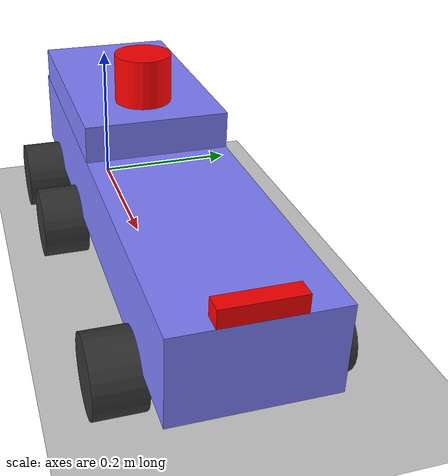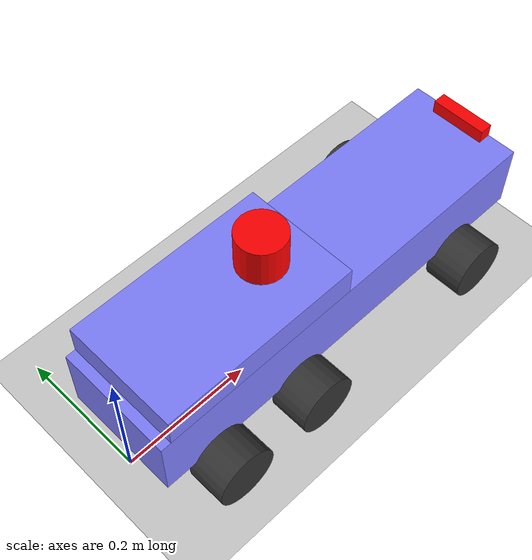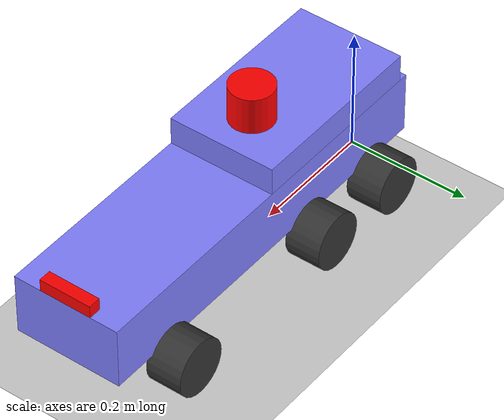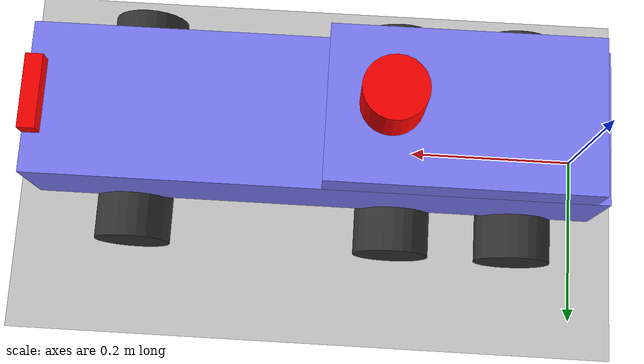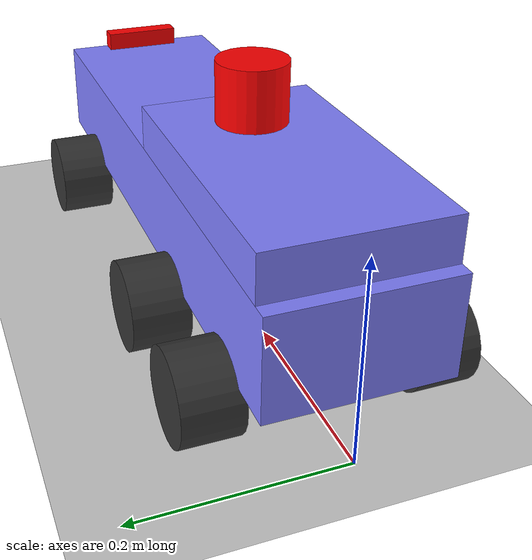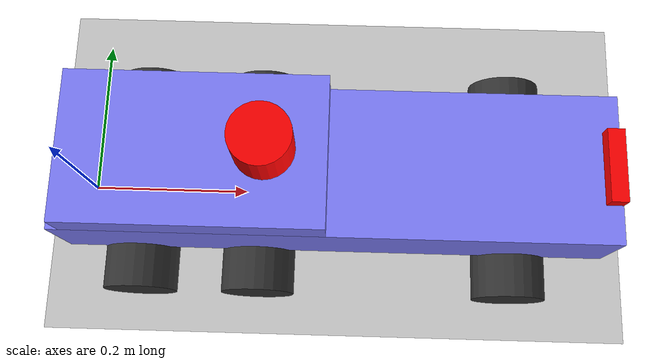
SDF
<?xml version="1.0" ?>
<sdf version="1.6">
  <world name="ackermann_steering">

    <physics name="1ms" type="ignored">
      <max_step_size>0.001</max_step_size>
      <real_time_factor>1.0</real_time_factor>
    </physics>
    <plugin
      filename="gz-sim-physics-system"
      name="gz::sim::systems::Physics">
    </plugin>
    <plugin
      filename="gz-sim-user-commands-system"
      name="gz::sim::systems::UserCommands">
    </plugin>
    <plugin
      filename="gz-sim-scene-broadcaster-system"
      name="gz::sim::systems::SceneBroadcaster">
    </plugin>

    <!-- imu -->
    <plugin filename="gz-sim-imu-system"
            name="gz::sim::systems::Imu">
    </plugin>
    <!-- lidar -->
    <plugin
        filename="gz-sim-sensors-system"
        name="gz::sim::systems::Sensors">
        <render_engine>ogre2</render_engine>
    </plugin>

    <light type="directional" name="sun">
      <cast_shadows>true</cast_shadows>
      <pose>0 0 10 0 0 0</pose>
      <diffuse>1 1 1 1</diffuse>
      <specular>0.5 0.5 0.5 1</specular>
      <attenuation>
        <range>1000</range>
        <constant>0.9</constant>
        <linear>0.01</linear>
        <quadratic>0.001</quadratic>
      </attenuation>
      <direction>-0.5 0.1 -0.9</direction>
    </light>

    <model name="ground_plane">
      <static>true</static>
      <link name="link">
        <collision name="collision">
          <geometry>
            <plane>
              <normal>0 0 1</normal>
              <size>100 100</size>
            </plane>
          </geometry>
          <surface>
            <friction>
              <ode>
                <mu>50</mu>
              </ode>
              <bullet>
                <friction>1</friction>
                <rolling_friction>0.1</rolling_friction>
              </bullet>
            </friction>
          </surface>
        </collision>
        <visual name="visual">
          <geometry>
            <plane>
              <normal>0 0 1</normal>
              <size>100 100</size>
            </plane>
          </geometry>
          <material>
            <ambient>0.8 0.8 0.8 1</ambient>
            <diffuse>0.8 0.8 0.8 1</diffuse>
            <specular>0.8 0.8 0.8 1</specular>
          </material>
        </visual>
      </link>
    </model>

    <model name='vehicle_blue'>
      <pose>0 0 0.12 0 00 0</pose>

    <!--baselink  -->
      <link name='chassis'>
        <pose>0.16 0 0 0 0 0</pose>
        <inertial>
          <mass>6000.0</mass>
          <inertia>
            <ixx>0.126164</ixx>
            <ixy>0</ixy>
            <ixz>0</ixz>
            <iyy>0.416519</iyy>
            <iyz>0</iyz>
            <izz>0.481014</izz>
          </inertia>
        </inertial>
        <visual name='visual'>
          <pose>0.16 0 0 0 0 0</pose>
          <geometry>
            <box>
              <size>0.65 0.175 0.1</size>
            </box>
          </geometry>
          <material>
            <ambient>0.5 0.5 1.0 1</ambient>
            <diffuse>0.5 0.5 1.0 1</diffuse>
            <specular>0.0 0.0 1.0 1</specular>
          </material>
        </visual>
        <collision name='collision'>
          <pose>0.16 0 0 0 0 0</pose>
          <geometry>
            <box>
              <size>0.65 0.175 0.1</size>
            </box>
          </geometry>
        </collision>
      </link>

    <!-- superstructure -->
    <link name='superstructure_link'>
        <pose relative_to="chassis">0 0 0.0725 0 0 0</pose>
        <inertial>
          <mass>2.0</mass>
          <inertia>
            <ixx>0.126164</ixx>
            <ixy>0</ixy>
            <ixz>0</ixz>
            <iyy>0.416519</iyy>
            <iyz>0</iyz>
            <izz>0.481014</izz>
          </inertia>
        </inertial>
        <visual name='visual'>
          <geometry>
            <box>
              <size>0.3 0.175 0.045</size>
            </box>
          </geometry>
          <material>
            <ambient>0.5 0.5 1.0 1</ambient>
            <diffuse>0.5 0.5 1.0 1</diffuse>
            <specular>0.0 0.0 1.0 1</specular>
          </material>
        </visual>
        <collision name='collision'>
          <geometry>
            <box>
              <size>0.3 0.175 0.045</size>
            </box>
          </geometry>
        </collision>
      </link>
    <joint name="superstructure_joint" type="fixed">
        <parent>chassis</parent>
        <child>superstructure_link</child>
        <pose relative_to="chassis">0 0 0.0725 0 0 0</pose>
    </joint>

    <!-- rear wheels -->
      <link name='rear_left_wheel'>
        <pose relative_to="chassis">-0.08 0.11 -0.0725 0 0 0</pose>

        <inertial>
          <mass>0.2</mass>
          <inertia>
            <ixx>0.145833</ixx>
            <ixy>0</ixy>
            <ixz>0</ixz>
            <iyy>0.145833</iyy>
            <iyz>0</iyz>
            <izz>0.125</izz>
          </inertia>
        </inertial>
        <visual name='visual'>
            <pose>0 0 0 1.5708 0 0</pose>
          <geometry>
            <cylinder>
              <length>0.0575</length>
              <radius>0.045</radius>
            </cylinder>
          </geometry>
          <material>
            <ambient>0.2 0.2 0.2 1</ambient>
            <diffuse>0.2 0.2 0.2 1</diffuse>
            <specular>0.2 0.2 0.2 1</specular>
          </material>
        </visual>
        <collision name='collision'>
            <pose>0 0 0 1.5708 0 0</pose>
          <geometry>
            <cylinder>
              <length>0.0575</length>
              <radius>0.045</radius>
            </cylinder>
          </geometry>
          <surface>
            <friction>
              <ode>
                <mu>0.5</mu>
                <mu2>1.0</mu2>
                <fdir1>0 0 1</fdir1>
              </ode>
              <bullet>
                <friction>0.5</friction>
                <friction2>1</friction2>
                <rolling_friction>0.1</rolling_friction>
              </bullet>
            </friction>
          </surface>
        </collision>
      </link>

      <link name='rear_right_wheel'>
        <pose relative_to="chassis">-0.08 -0.11 -0.0725 0 0 0</pose>
        <inertial>
          <mass>0.2</mass>
          <inertia>
            <ixx>0.145833</ixx>
            <ixy>0</ixy>
            <ixz>0</ixz>
            <iyy>0.145833</iyy>
            <iyz>0</iyz>
            <izz>0.125</izz>
          </inertia>
        </inertial>
        <visual name='visual'>

            <pose>0 0 0 1.5708 0 0</pose>
          <geometry>
            <cylinder>
              <length>0.0575</length>
              <radius>0.045</radius>
            </cylinder>
          </geometry>
          <material>
            <ambient>0.2 0.2 0.2 1</ambient>
            <diffuse>0.2 0.2 0.2 1</diffuse>
            <specular>0.2 0.2 0.2 1</specular>
          </material>
        </visual>
        <collision name='collision'>
            <pose>0 0 0 1.5708 0 0</pose>
          <geometry>
            <cylinder>
              <length>0.0575</length>
              <radius>0.045</radius>
            </cylinder>
          </geometry>
          <surface>
            <friction>
              <ode>
                <mu>0.5</mu>
                <mu2>1.0</mu2>
                <fdir1>0 0 1</fdir1>
              </ode>
              <bullet>
                <friction>0.5</friction>
                <friction2>1</friction2>
                <rolling_friction>0.5</rolling_friction>
              </bullet>
            </friction>
          </surface>
        </collision>
      </link>

      <!-- mid wheels -->
        <link name='mid_left_wheel'>
        <pose relative_to="chassis">0.065 0.11 -0.0725 0 0 0</pose>

        <inertial>
          <mass>0.2</mass>
          <inertia>
            <ixx>0.145833</ixx>
            <ixy>0</ixy>
            <ixz>0</ixz>
            <iyy>0.145833</iyy>
            <iyz>0</iyz>
            <izz>0.125</izz>
          </inertia>
        </inertial>
        <visual name='visual'>
            <pose>0 0 0 1.5708 0 0</pose>
          <geometry>
            <cylinder>
              <length>0.0575</length>
              <radius>0.045</radius>
            </cylinder>
          </geometry>
          <material>
            <ambient>0.2 0.2 0.2 1</ambient>
            <diffuse>0.2 0.2 0.2 1</diffuse>
            <specular>0.2 0.2 0.2 1</specular>
          </material>
        </visual>
        <collision name='collision'>
            <pose>0 0 0 1.5708 0 0</pose>
          <geometry>
            <cylinder>
              <length>0.0575</length>
              <radius>0.045</radius>
            </cylinder>
          </geometry>
          <surface>
            <friction>
              <ode>
                <mu>0.5</mu>
                <mu2>1.0</mu2>
                <fdir1>0 0 1</fdir1>
              </ode>
              <bullet>
                <friction>0.5</friction>
                <friction2>1</friction2>
                <rolling_friction>0.1</rolling_friction>
              </bullet>
            </friction>
          </surface>
        </collision>
      </link>

      <link name='mid_right_wheel'>
        <pose relative_to="chassis">0.065 -0.11 -0.0725 0 0 0</pose>
        <inertial>
          <mass>0.2</mass>
          <inertia>
            <ixx>0.145833</ixx>
            <ixy>0</ixy>
            <ixz>0</ixz>
            <iyy>0.145833</iyy>
            <iyz>0</iyz>
            <izz>0.125</izz>
          </inertia>
        </inertial>
        <visual name='visual'>

            <pose>0 0 0 1.5708 0 0</pose>
          <geometry>
            <cylinder>
              <length>0.0575</length>
              <radius>0.045</radius>
            </cylinder>
          </geometry>
          <material>
            <ambient>0.2 0.2 0.2 1</ambient>
            <diffuse>0.2 0.2 0.2 1</diffuse>
            <specular>0.2 0.2 0.2 1</specular>
          </material>
        </visual>
        <collision name='collision'>
            <pose>0 0 0 1.5708 0 0</pose>
          <geometry>
            <cylinder>
              <length>0.0575</length>
              <radius>0.045</radius>
            </cylinder>
          </geometry>
          <surface>
            <friction>
              <ode>
                <mu>0.5</mu>
                <mu2>1.0</mu2>
                <fdir1>0 0 1</fdir1>
              </ode>
              <bullet>
                <friction>0.5</friction>
                <friction2>1</friction2>
                <rolling_friction>0.5</rolling_friction>
              </bullet>
            </friction>
          </surface>
        </collision>
      </link>

     <!-- front wheels -->
      <link name='front_left_wheel'>
        <pose relative_to="chassis">0.375 0.11 -0.0725 0 0 0</pose>
        <inertial>
          <mass>0.2</mass>
          <inertia>
            <ixx>0.145833</ixx>
            <ixy>0</ixy>
            <ixz>0</ixz>
            <iyy>0.145833</iyy>
            <iyz>0</iyz>
            <izz>0.125</izz>
          </inertia>
        </inertial>
        <visual name='visual'>
            <pose>0 0 0 1.5708 0 0</pose>
          <geometry>
            <cylinder>
              <length>0.0575</length>
              <radius>0.045</radius>
            </cylinder>
          </geometry>
          <material>
            <ambient>0.2 0.2 0.2 1</ambient>
            <diffuse>0.2 0.2 0.2 1</diffuse>
            <specular>0.2 0.2 0.2 1</specular>
          </material>
        </visual>
        <collision name='collision'>
            <pose>0 0 0 1.5708 0 0</pose>
          <geometry>
            <cylinder>
              <length>0.0575</length>
              <radius>0.045</radius>
            </cylinder>
          </geometry>
          <surface>
            <friction>
              <ode>
                <mu>0.5</mu>
                <mu2>1.0</mu2>
                <fdir1>0 0 1</fdir1>
              </ode>
              <bullet>
                <friction>0.5</friction>
                <friction2>1</friction2>
                <rolling_friction>0.5</rolling_friction>
              </bullet>
            </friction>
          </surface>
        </collision>
      </link>

      <link name='front_right_wheel'>
      <pose relative_to="chassis">0.375 -0.11 -0.0725 0 0 0</pose>
        <inertial>
          <mass>0.2</mass>
          <inertia>
            <ixx>0.145833</ixx>
            <ixy>0</ixy>
            <ixz>0</ixz>
            <iyy>0.145833</iyy>
            <iyz>0</iyz>
            <izz>0.125</izz>
          </inertia>
        </inertial>
        <visual name='visual'>
            <pose>0 0 0 1.5708 0 0</pose>
          <geometry>
            <cylinder>
              <length>0.0575</length>
              <radius>0.045</radius>
            </cylinder>
          </geometry>
          <material>
            <ambient>0.2 0.2 0.2 1</ambient>
            <diffuse>0.2 0.2 0.2 1</diffuse>
            <specular>0.2 0.2 0.2 1</specular>
          </material>
        </visual>
        <collision name='collision'>
            <pose>0 0 0 1.5708 0 0</pose>
          <geometry>
            <cylinder>
              <length>0.0575</length>
              <radius>0.045</radius>
            </cylinder>
          </geometry>
          <surface>
            <friction>
              <ode>
                <mu>0.5</mu>
                <mu2>1.0</mu2>
                <fdir1>0 0 1</fdir1>
              </ode>
              <bullet>
                <friction>0.5</friction>
                <friction2>1</friction2>
                <rolling_friction>0.1</rolling_friction>
              </bullet>
            </friction>
          </surface>
        </collision>
      </link>

        <!-- steering links -->
      <link name="front_left_wheel_steering_link">
        <pose relative_to="chassis">0.375 0.11 -0.0725 0 0 0</pose>
        <inertial>
          <mass>0.1</mass>
          <inertia>
            <ixx>0.0153</ixx>
            <iyy>0.025</iyy>
            <izz>0.0153</izz>
          </inertia>
        </inertial>
      </link>

      <link name="front_right_wheel_steering_link">
        <pose relative_to="chassis">0.375 -0.11 -0.0725 0 0 0</pose>
        <inertial>
          <mass>0.1</mass>
          <inertia>
            <ixx>0.0153</ixx>
            <iyy>0.025</iyy>
            <izz>0.0153</izz>
          </inertia>
        </inertial>
      </link>

        <!-- lidar link  -->
        <link name="laser_frame">
            <pose relative_to="superstructure_link">0.08 0 0.0525 0 0 0</pose>
            <visual name="laser_visual">
                <geometry>
                    <cylinder>
                        <radius>0.035</radius>
                        <length>0.06</length>
                    </cylinder>
                </geometry>
                <material>
                    <ambient>1.0 0.0 0.0 1.0</ambient>
                    <diffuse>1.0 0.0 0.0 1.0</diffuse>
                    <specular>0.0 0.0 0.0 1.0</specular>
                </material>
            </visual>
            <sensor name='gpu_lidar' type='gpu_lidar'>"
                <pose relative_to='lidar_frame'>0 0 0 0 0 0</pose>
                <topic>lidar</topic>
                <update_rate>10</update_rate>
                <ray>
                    <scan>
                        <horizontal>
                            <samples>640</samples>
                            <resolution>1</resolution>
                            <min_angle>-3.1415</min_angle>
                            <max_angle>3.1415</max_angle>
                        </horizontal>
                        <vertical>
                            <samples>1</samples>
                            <resolution>0.01</resolution>
                            <min_angle>0</min_angle>
                            <max_angle>0</max_angle>
                        </vertical>
                    </scan>
                    <range>
                        <min>0.08</min>
                        <max>10.0</max>
                        <resolution>0.01</resolution>
                    </range>
                </ray>
                <always_on>1</always_on>
                <visualize>true</visualize>
            </sensor>
        </link>

        <!-- camera -->
        <link name="camera_link">
            <pose relative_to="chassis">0.475 0 0.06 0 0 0</pose>
            <visual name="camera_visual">
                <geometry>
                    <box>
                        <size>0.02 0.085 0.02</size>
                    </box>
                </geometry>
                <material>
                    <ambient>1.0 0.0 0.0 1.0</ambient>
                    <diffuse>1.0 0.0 0.0 1.0</diffuse>
                    <specular>0.0 0.0 0.0 1.0</specular>
                </material>
            </visual>

            <sensor name="camera" type="camera">
                <pose> 0 0 0 0 0 0 </pose>
                <visualize>true</visualize>
                <update_rate>10</update_rate>
                <camera>
                    <camera_info_topic>camera/camera_info</camera_info_topic>
                    <horizontal_fov>1.089</horizontal_fov>
                    <image>
                        <format>R8G8B8</format>
                        <width>640</width>
                        <height>480</height>
                    </image>
                    <clip>
                        <near>0.05</near>
                        <far>8.0</far>
                    </clip>
                </camera>
                <topic>camera/image_raw</topic>
            </sensor>
        </link>

        <!-- imu -->
        <link name="imu_link">
            <pose relative_to="chassis">0 0 0 0 0 0</pose>
            <visual name="imu_visual">
                <geometry>
                    <box>
                        <size>0.045 0.06 0.01</size>
                    </box>
                </geometry>
                <material>
                    <ambient>1.0 0.0 0.0 1.0</ambient>
                    <diffuse>1.0 0.0 0.0 1.0</diffuse>
                    <specular>0.0 0.0 0.0 1.0</specular>
                </material>
            </visual>
            <sensor name="imu_sensor" type="imu">
                <always_on>1</always_on>
                <update_rate>30</update_rate>
                <visualize>true</visualize>
                <topic>imu</topic>
            </sensor>
        </link>

        <!-- sensor links -->
        <joint name="laser_joint" type="fixed">
            <parent>superstructure_link</parent>
            <child>laser_frame</child>
        </joint>

        <joint name="camera_joint" type="fixed">
            <parent>chassis</parent>
            <child>camera_link</child>
        </joint>

        <joint name="imu_joint" type="fixed">
            <parent>chassis</parent>
            <child>imu_link</child>
        </joint>

        <!-- steering joints -->
      <joint name="front_left_wheel_steering_joint" type="revolute">
        <child>front_left_wheel_steering_link</child>
        <parent>chassis</parent>
        <axis>
          <xyz>0 0 1</xyz>
          <limit>
            <lower>-0.6</lower>
            <upper>+0.6</upper>
            <velocity>1.0</velocity>
            <effort>25</effort>
          </limit>
          <use_parent_model_frame>1</use_parent_model_frame>
        </axis>
      </joint>

      <joint name="front_right_wheel_steering_joint" type="revolute">
        <parent>chassis</parent>
        <child>front_right_wheel_steering_link</child>
        <axis>
          <xyz>0 0 1</xyz>
          <limit>
            <lower>-0.6</lower>
            <upper>+0.6</upper>
            <velocity>1.0</velocity>
            <effort>25</effort>
          </limit>
        </axis>
      </joint>

        <!-- front joints  -->
      <joint name='front_left_wheel_joint' type='revolute'>
        <parent>front_left_wheel_steering_link</parent>
        <child>front_left_wheel</child>
        <axis>
          <xyz>0 1 0</xyz>
          <limit>
            <lower>-1.79769e+308</lower>
            <upper>1.79769e+308</upper>
          </limit>
        </axis>
      </joint>

      <joint name='front_right_wheel_joint' type='revolute'>
        <parent>front_right_wheel_steering_link</parent>
        <child>front_right_wheel</child>
        <axis>
          <xyz>0 1 0</xyz>
          <limit>
            <lower>-1.79769e+308</lower>
            <upper>1.79769e+308</upper>
          </limit>
        </axis>
      </joint>

        <!-- read joints -->
      <joint name='rear_left_wheel_joint' type='revolute'>
        <parent>chassis</parent>
        <child>rear_left_wheel</child>
        <axis>
          <xyz>0 1 0</xyz>
          <limit>
            <lower>-1.79769e+308</lower>
            <upper>1.79769e+308</upper>
          </limit>
        </axis>
      </joint>

      <joint name='rear_right_wheel_joint' type='revolute'>
        <parent>chassis</parent>
        <child>rear_right_wheel</child>
        <axis>
          <xyz>0 1 0</xyz>
          <limit>
            <lower>-1.79769e+308</lower>
            <upper>1.79769e+308</upper>
          </limit>
        </axis>
      </joint>

    <!-- mid joints  -->
    <joint name='mid_left_wheel_joint' type='revolute'>
        <parent>chassis</parent>
        <child>mid_left_wheel</child>
        <axis>
          <xyz>0 1 0</xyz>
          <limit>
            <lower>-1.79769e+308</lower>
            <upper>1.79769e+308</upper>
          </limit>
        </axis>
      </joint>

      <joint name='mid_right_wheel_joint' type='revolute'>
        <parent>chassis</parent>
        <child>mid_right_wheel</child>
        <axis>
          <xyz>0 1 0</xyz>
          <limit>
            <lower>-1.79769e+308</lower>
            <upper>1.79769e+308</upper>
          </limit>
        </axis>
      </joint>

      <plugin
        filename="gz-sim-ackermann-steering-system"
        name="gz::sim::systems::AckermannSteering">
        <left_joint>front_left_wheel_joint</left_joint>
        <left_joint>rear_left_wheel_joint</left_joint>
        <left_joint>mid_left_wheel_joint</left_joint>
        <right_joint>front_right_wheel_joint</right_joint>
        <right_joint>rear_right_wheel_joint</right_joint>
        <right_joint>mid_right_wheel_joint</right_joint>
        <left_steering_joint>front_left_wheel_steering_joint</left_steering_joint>
        <right_steering_joint>front_right_wheel_steering_joint</right_steering_joint>
        <kingpin_width>0.22</kingpin_width>
        <steering_limit>0.7854</steering_limit>
        <wheel_base>0.4</wheel_base>
        <wheel_separation>0.22</wheel_separation>
        <wheel_radius>0.0575</wheel_radius>
        <min_velocity>-5</min_velocity>
        <max_velocity>5</max_velocity>
        <min_acceleration>-7</min_acceleration>
        <max_acceleration>7</max_acceleration>
      </plugin>

    </model>

  </world>
</sdf>
